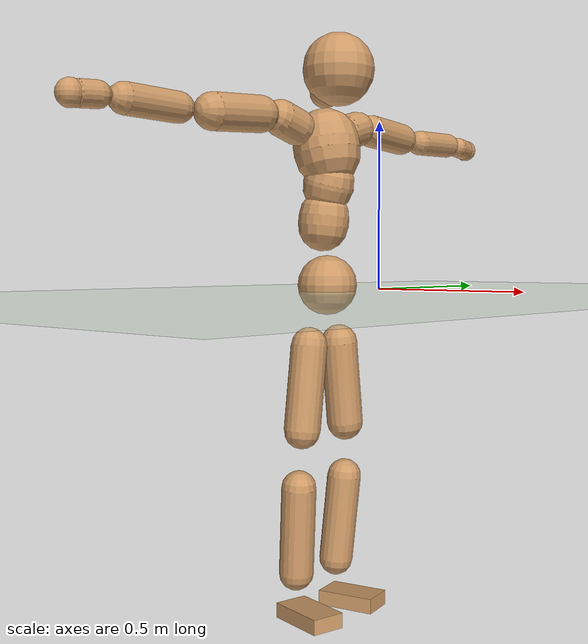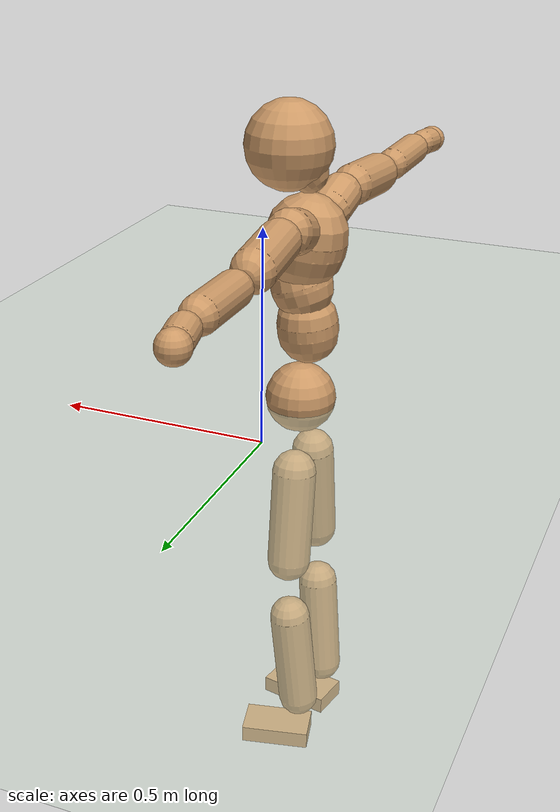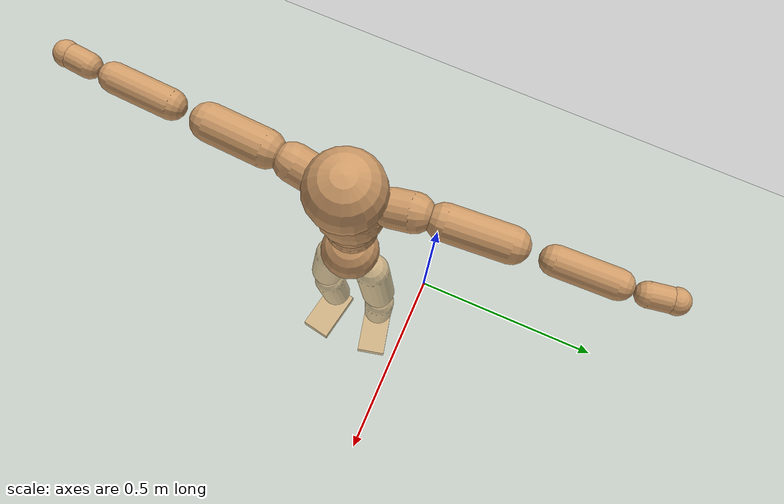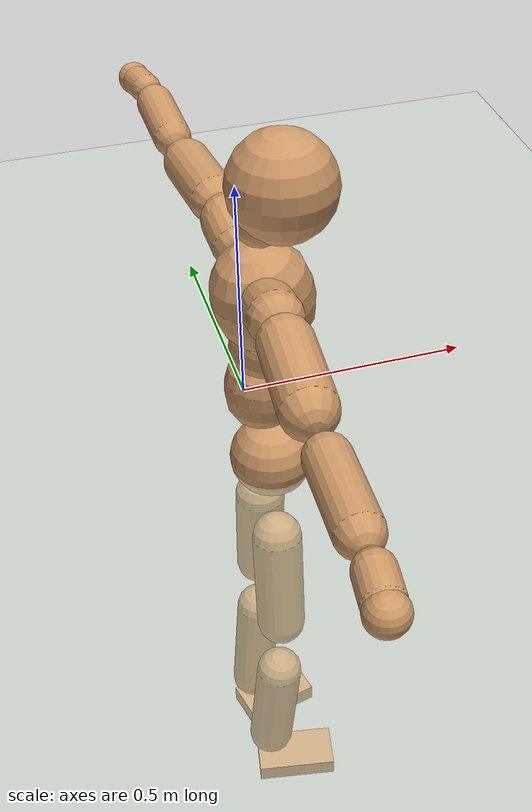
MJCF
<mujoco model="humanoid">
  <compiler coordinate="local"/>
  <default>
    <joint damping="0.0" armature="0.01" stiffness="0.0" limited="true"/>
    <geom conaffinity="1" condim="3" contype="7" margin="0.001" rgba="0.8 0.6 .4 1"/>
  </default>
  <asset>
    <texture type="skybox" builtin="gradient" rgb1=".4 .5 .6" rgb2="0 0 0" width="100" height="100"/>
    <texture builtin="flat" height="1278" mark="cross" markrgb="1 1 1" name="texgeom" random="0.01" rgb1="0.8 0.6 0.4" rgb2="0.8 0.6 0.4" type="cube" width="127"/>
    <texture builtin="checker" height="100" name="texplane" rgb1="0 0 0" rgb2="0.8 0.8 0.8" type="2d" width="100"/>
    <material name="MatPlane" reflectance="0.5" shininess="1" specular="1" texrepeat="60 60" texture="texplane"/>
    <material name="geom" texture="texgeom" texuniform="true"/>
  </asset>
  <worldbody>
    <light cutoff="100" diffuse="1 1 1" dir="-0 0 -1.3" directional="true" exponent="1" pos="0 0 1.3" specular=".1 .1 .1"/>
    <geom conaffinity="1" condim="3" name="floor" pos="0 0 0" rgba="0.8 0.9 0.8 1" size="100 100 .2" type="plane" material="MatPlane"/>
    <body name="Pelvis" pos="-0.0037 -0.2321 0.0154">
      <freejoint name="Pelvis"/>
      <geom type="sphere" contype="1" conaffinity="1" density="500" size="0.0852" pos="0.0000 0.0000 0.0000" name="Pelvis"/>
      <body name="L_Hip" pos="-0.0118 0.057 -0.0904">
        <joint name="L_Hip_x" type="hinge" pos="0 0 0" axis="1 0 0" stiffness="800" damping="80" armature="0.02" range="-180.0000 180.0000"/>
        <joint name="L_Hip_y" type="hinge" pos="0 0 0" axis="0 1 0" stiffness="800" damping="80" armature="0.02" range="-180.0000 180.0000"/>
        <joint name="L_Hip_z" type="hinge" pos="0 0 0" axis="0 0 1" stiffness="800" damping="80" armature="0.02" range="-180.0000 180.0000"/>
        <geom type="capsule" contype="1" conaffinity="1" density="500" fromto="0.0004 0.0084 -0.0791 0.0016 0.0338 -0.3166" size="0.0531" name="L_Hip"/>
        <body name="L_Knee" pos="0.002 0.0422 -0.3957">
          <joint name="L_Knee_x" type="hinge" pos="0 0 0" axis="1 0 0" stiffness="800" damping="80" armature="0.02" range="-180.0000 180.0000"/>
          <joint name="L_Knee_y" type="hinge" pos="0 0 0" axis="0 1 0" stiffness="800" damping="80" armature="0.02" range="-180.0000 180.0000"/>
          <joint name="L_Knee_z" type="hinge" pos="0 0 0" axis="0 0 1" stiffness="800" damping="80" armature="0.02" range="-180.0000 180.0000"/>
          <geom type="capsule" contype="1" conaffinity="1" density="500" fromto="-0.0077 -0.0034 -0.0843 -0.0308 -0.0134 -0.3372" size="0.05" name="L_Knee"/>
          <body name="L_Ankle" pos="-0.0385 -0.0168 -0.4214">
            <joint name="L_Ankle_x" type="hinge" pos="0 0 0" axis="1 0 0" stiffness="800" damping="80" armature="0.02" range="-180.0000 180.0000"/>
            <joint name="L_Ankle_y" type="hinge" pos="0 0 0" axis="0 1 0" stiffness="800" damping="80" armature="0.02" range="-180.0000 180.0000"/>
            <joint name="L_Ankle_z" type="hinge" pos="0 0 0" axis="0 0 1" stiffness="800" damping="80" armature="0.02" range="-180.0000 180.0000"/>
            <geom type="box" contype="1" conaffinity="1" density="500" pos="0.0622 0.0143 -0.0288" size="0.0861 0.0489 0.0217" quat="0.9937 0.0000 0.0000 0.1124" name="L_Ankle"/>
            <body name="L_Toe" pos="0.1245 0.0285 -0.0575">
              <joint name="L_Toe_x" type="hinge" pos="0 0 0" axis="1 0 0" stiffness="500" damping="50" armature="0.02" range="-180.0000 180.0000"/>
              <joint name="L_Toe_y" type="hinge" pos="0 0 0" axis="0 1 0" stiffness="500" damping="50" armature="0.02" range="-180.0000 180.0000"/>
              <joint name="L_Toe_z" type="hinge" pos="0 0 0" axis="0 0 1" stiffness="500" damping="50" armature="0.02" range="-180.0000 180.0000"/>
              <geom type="box" contype="1" conaffinity="1" density="500" pos="0.0000 0.0000 0.0286" size="0.001 0.0024 0.0011" quat="0.9930 0.0000 0.0000 0.1182" name="L_Toe"/>
            </body>
          </body>
        </body>
      </body>
      <body name="R_Hip" pos="-0.0099 -0.0556 -0.0895">
        <joint name="R_Hip_x" type="hinge" pos="0 0 0" axis="1 0 0" stiffness="800" damping="80" armature="0.02" range="-180.0000 180.0000"/>
        <joint name="R_Hip_y" type="hinge" pos="0 0 0" axis="0 1 0" stiffness="800" damping="80" armature="0.02" range="-180.0000 180.0000"/>
        <joint name="R_Hip_z" type="hinge" pos="0 0 0" axis="0 0 1" stiffness="800" damping="80" armature="0.02" range="-180.0000 180.0000"/>
        <geom type="capsule" contype="1" conaffinity="1" density="500" fromto="-0.0010 -0.0089 -0.0807 -0.0038 -0.0357 -0.3226" size="0.052" name="R_Hip"/>
        <body name="R_Knee" pos="-0.0048 -0.0446 -0.4033">
          <joint name="R_Knee_x" type="hinge" pos="0 0 0" axis="1 0 0" stiffness="800" damping="80" armature="0.02" range="-180.0000 180.0000"/>
          <joint name="R_Knee_y" type="hinge" pos="0 0 0" axis="0 1 0" stiffness="800" damping="80" armature="0.02" range="-180.0000 180.0000"/>
          <joint name="R_Knee_z" type="hinge" pos="0 0 0" axis="0 0 1" stiffness="800" damping="80" armature="0.02" range="-180.0000 180.0000"/>
          <geom type="capsule" contype="1" conaffinity="1" density="500" fromto="-0.0072 0.0039 -0.0843 -0.0288 0.0155 -0.3373" size="0.0502" name="R_Knee"/>
          <body name="R_Ankle" pos="-0.036 0.0194 -0.4216">
            <joint name="R_Ankle_x" type="hinge" pos="0 0 0" axis="1 0 0" stiffness="800" damping="80" armature="0.02" range="-180.0000 180.0000"/>
            <joint name="R_Ankle_y" type="hinge" pos="0 0 0" axis="0 1 0" stiffness="800" damping="80" armature="0.02" range="-180.0000 180.0000"/>
            <joint name="R_Ankle_z" type="hinge" pos="0 0 0" axis="0 0 1" stiffness="800" damping="80" armature="0.02" range="-180.0000 180.0000"/>
            <geom type="box" contype="1" conaffinity="1" density="500" pos="0.0647 -0.0121 -0.0254" size="0.0904 0.0498 0.0215" quat="0.9957 0.0000 0.0000 -0.0922" name="R_Ankle"/>
            <body name="R_Toe" pos="0.1293 -0.0242 -0.0507">
              <joint name="R_Toe_x" type="hinge" pos="0 0 0" axis="1 0 0" stiffness="500" damping="50" armature="0.02" range="-180.0000 180.0000"/>
              <joint name="R_Toe_y" type="hinge" pos="0 0 0" axis="0 1 0" stiffness="500" damping="50" armature="0.02" range="-180.0000 180.0000"/>
              <joint name="R_Toe_z" type="hinge" pos="0 0 0" axis="0 0 1" stiffness="500" damping="50" armature="0.02" range="-180.0000 180.0000"/>
              <geom type="box" contype="1" conaffinity="1" density="500" pos="0.0000 0.0000 0.0262" size="0.001 0.0024 0.0011" quat="0.9965 0.0000 0.0000 -0.0835" name="R_Toe"/>
            </body>
          </body>
        </body>
      </body>
      <body name="Torso" pos="-0.0208 -0.0028 0.1108">
        <joint name="Torso_x" type="hinge" pos="0 0 0" axis="1 0 0" stiffness="1000" damping="100" armature="0.02" range="-180.0000 180.0000"/>
        <joint name="Torso_y" type="hinge" pos="0 0 0" axis="0 1 0" stiffness="1000" damping="100" armature="0.02" range="-180.0000 180.0000"/>
        <joint name="Torso_z" type="hinge" pos="0 0 0" axis="0 0 1" stiffness="1000" damping="100" armature="0.02" range="-180.0000 180.0000"/>
        <geom type="capsule" contype="1" conaffinity="1" density="500" fromto="0.0069 0.0052 0.0873 0.0046 0.0035 0.0582" size="0.0725" name="Torso"/>
        <body name="Spine" pos="0.0115 0.0087 0.1456">
          <joint name="Spine_x" type="hinge" pos="0 0 0" axis="1 0 0" stiffness="1000" damping="100" armature="0.02" range="-180.0000 180.0000"/>
          <joint name="Spine_y" type="hinge" pos="0 0 0" axis="0 1 0" stiffness="1000" damping="100" armature="0.02" range="-180.0000 180.0000"/>
          <joint name="Spine_z" type="hinge" pos="0 0 0" axis="0 0 1" stiffness="1000" damping="100" armature="0.02" range="-180.0000 180.0000"/>
          <geom type="capsule" contype="1" conaffinity="1" density="500" fromto="0.0107 0.0006 0.0345 0.0071 0.0004 0.0230" size="0.073" name="Spine"/>
          <body name="Chest" pos="0.0178 0.0009 0.0574">
            <joint name="Chest_x" type="hinge" pos="0 0 0" axis="1 0 0" stiffness="1000" damping="100" armature="0.02" range="-180.0000 180.0000"/>
            <joint name="Chest_y" type="hinge" pos="0 0 0" axis="0 1 0" stiffness="1000" damping="100" armature="0.02" range="-180.0000 180.0000"/>
            <joint name="Chest_z" type="hinge" pos="0 0 0" axis="0 0 1" stiffness="1000" damping="100" armature="0.02" range="-180.0000 180.0000"/>
            <geom type="capsule" contype="1" conaffinity="1" density="500" fromto="-0.0184 -0.0020 0.0921 -0.0122 -0.0014 0.0614" size="0.0956" name="Chest"/>
            <body name="Neck" pos="-0.0291 -0.0052 0.2179">
              <joint name="Neck_x" type="hinge" pos="0 0 0" axis="1 0 0" stiffness="500" damping="50" armature="0.02" range="-180.0000 180.0000"/>
              <joint name="Neck_y" type="hinge" pos="0 0 0" axis="0 1 0" stiffness="500" damping="50" armature="0.02" range="-180.0000 180.0000"/>
              <joint name="Neck_z" type="hinge" pos="0 0 0" axis="0 0 1" stiffness="500" damping="50" armature="0.02" range="-180.0000 180.0000"/>
              <geom type="capsule" contype="1" conaffinity="1" density="500" fromto="0.0109 0.0016 0.0147 0.0436 0.0064 0.0588" size="0.0455" name="Neck"/>
              <body name="Head" pos="0.0545 0.008 0.0735">
                <joint name="Head_x" type="hinge" pos="0 0 0" axis="1 0 0" stiffness="500" damping="50" armature="0.02" range="-180.0000 180.0000"/>
                <joint name="Head_y" type="hinge" pos="0 0 0" axis="0 1 0" stiffness="500" damping="50" armature="0.02" range="-180.0000 180.0000"/>
                <joint name="Head_z" type="hinge" pos="0 0 0" axis="0 0 1" stiffness="500" damping="50" armature="0.02" range="-180.0000 180.0000"/>
                <geom type="sphere" contype="1" conaffinity="1" density="500" size="0.1018" pos="0.0000 0.0000 0.0000" name="Head"/>
              </body>
            </body>
            <body name="L_Thorax" pos="-0.0301 0.0799 0.1232">
              <joint name="L_Thorax_x" type="hinge" pos="0 0 0" axis="1 0 0" stiffness="500" damping="50" armature="0.02" range="-180.0000 180.0000"/>
              <joint name="L_Thorax_y" type="hinge" pos="0 0 0" axis="0 1 0" stiffness="500" damping="50" armature="0.02" range="-180.0000 180.0000"/>
              <joint name="L_Thorax_z" type="hinge" pos="0 0 0" axis="0 0 1" stiffness="500" damping="50" armature="0.02" range="-180.0000 180.0000"/>
              <geom type="capsule" contype="1" conaffinity="1" density="500" fromto="-0.0017 0.0190 0.0056 -0.0070 0.0762 0.0223" size="0.0516" name="L_Thorax"/>
              <body name="L_Shoulder" pos="-0.0087 0.0952 0.0279">
                <joint name="L_Shoulder_x" type="hinge" pos="0 0 0" axis="1 0 0" stiffness="500" damping="50" armature="0.02" range="-720.0000 720.0000"/>
                <joint name="L_Shoulder_y" type="hinge" pos="0 0 0" axis="0 1 0" stiffness="500" damping="50" armature="0.02" range="-720.0000 720.0000"/>
                <joint name="L_Shoulder_z" type="hinge" pos="0 0 0" axis="0 0 1" stiffness="500" damping="50" armature="0.02" range="-720.0000 720.0000"/>
                <geom type="capsule" contype="1" conaffinity="1" density="500" fromto="-0.0046 0.0557 -0.0030 -0.0185 0.2230 -0.0118" size="0.0481" name="L_Shoulder"/>
                <body name="L_Elbow" pos="-0.0231 0.2787 -0.0148">
                  <joint name="L_Elbow_x" type="hinge" pos="0 0 0" axis="1 0 0" stiffness="500" damping="50" armature="0.02" range="-720.0000 720.0000"/>
                  <joint name="L_Elbow_y" type="hinge" pos="0 0 0" axis="0 1 0" stiffness="500" damping="50" armature="0.02" range="-720.0000 720.0000"/>
                  <joint name="L_Elbow_z" type="hinge" pos="0 0 0" axis="0 0 1" stiffness="500" damping="50" armature="0.02" range="-720.0000 720.0000"/>
                  <geom type="capsule" contype="1" conaffinity="1" density="500" fromto="-0.0011 0.0526 0.0016 -0.0043 0.2103 0.0064" size="0.0391" name="L_Elbow"/>
                  <body name="L_Wrist" pos="-0.0054 0.2629 0.008">
                    <joint name="L_Wrist_x" type="hinge" pos="0 0 0" axis="1 0 0" stiffness="300" damping="30" armature="0.02" range="-180.0000 180.0000"/>
                    <joint name="L_Wrist_y" type="hinge" pos="0 0 0" axis="0 1 0" stiffness="300" damping="30" armature="0.02" range="-180.0000 180.0000"/>
                    <joint name="L_Wrist_z" type="hinge" pos="0 0 0" axis="0 0 1" stiffness="300" damping="30" armature="0.02" range="-180.0000 180.0000"/>
                    <geom type="capsule" contype="1" conaffinity="1" density="500" fromto="-0.0034 0.0174 -0.0012 -0.0134 0.0697 -0.0049" size="0.0327" name="L_Wrist"/>
                    <body name="L_Hand" pos="-0.0168 0.0871 -0.0061">
                      <joint name="L_Hand_x" type="hinge" pos="0 0 0" axis="1 0 0" stiffness="300" damping="30" armature="0.02" range="-180.0000 180.0000"/>
                      <joint name="L_Hand_y" type="hinge" pos="0 0 0" axis="0 1 0" stiffness="300" damping="30" armature="0.02" range="-180.0000 180.0000"/>
                      <joint name="L_Hand_z" type="hinge" pos="0 0 0" axis="0 0 1" stiffness="300" damping="30" armature="0.02" range="-180.0000 180.0000"/>
                      <geom type="sphere" contype="1" conaffinity="1" density="500" size="0.0345" pos="0.0000 0.0000 0.0000" name="L_Hand"/>
                    </body>
                  </body>
                </body>
              </body>
            </body>
            <body name="R_Thorax" pos="-0.0325 -0.0849 0.1193">
              <joint name="R_Thorax_x" type="hinge" pos="0 0 0" axis="1 0 0" stiffness="500" damping="50" armature="0.02" range="-180.0000 180.0000"/>
              <joint name="R_Thorax_y" type="hinge" pos="0 0 0" axis="0 1 0" stiffness="500" damping="50" armature="0.02" range="-180.0000 180.0000"/>
              <joint name="R_Thorax_z" type="hinge" pos="0 0 0" axis="0 0 1" stiffness="500" damping="50" armature="0.02" range="-180.0000 180.0000"/>
              <geom type="capsule" contype="1" conaffinity="1" density="500" fromto="-0.0013 -0.0202 0.0064 -0.0052 -0.0807 0.0257" size="0.0509" name="R_Thorax"/>
              <body name="R_Shoulder" pos="-0.0065 -0.1008 0.0322">
                <joint name="R_Shoulder_x" type="hinge" pos="0 0 0" axis="1 0 0" stiffness="500" damping="50" armature="0.02" range="-720.0000 720.0000"/>
                <joint name="R_Shoulder_y" type="hinge" pos="0 0 0" axis="0 1 0" stiffness="500" damping="50" armature="0.02" range="-720.0000 720.0000"/>
                <joint name="R_Shoulder_z" type="hinge" pos="0 0 0" axis="0 0 1" stiffness="500" damping="50" armature="0.02" range="-720.0000 720.0000"/>
                <geom type="capsule" contype="1" conaffinity="1" density="500" fromto="-0.0035 -0.0535 -0.0032 -0.0141 -0.2142 -0.0127" size="0.0504" name="R_Shoulder"/>
                <body name="R_Elbow" pos="-0.0176 -0.2677 -0.0158">
                  <joint name="R_Elbow_x" type="hinge" pos="0 0 0" axis="1 0 0" stiffness="500" damping="50" armature="0.02" range="-720.0000 720.0000"/>
                  <joint name="R_Elbow_y" type="hinge" pos="0 0 0" axis="0 1 0" stiffness="500" damping="50" armature="0.02" range="-720.0000 720.0000"/>
                  <joint name="R_Elbow_z" type="hinge" pos="0 0 0" axis="0 0 1" stiffness="500" damping="50" armature="0.02" range="-720.0000 720.0000"/>
                  <geom type="capsule" contype="1" conaffinity="1" density="500" fromto="-0.0022 -0.0540 0.0013 -0.0088 -0.2160 0.0053" size="0.0401" name="R_Elbow"/>
                  <body name="R_Wrist" pos="-0.011 -0.27 0.0067">
                    <joint name="R_Wrist_x" type="hinge" pos="0 0 0" axis="1 0 0" stiffness="300" damping="30" armature="0.02" range="-180.0000 180.0000"/>
                    <joint name="R_Wrist_y" type="hinge" pos="0 0 0" axis="0 1 0" stiffness="300" damping="30" armature="0.02" range="-180.0000 180.0000"/>
                    <joint name="R_Wrist_z" type="hinge" pos="0 0 0" axis="0 0 1" stiffness="300" damping="30" armature="0.02" range="-180.0000 180.0000"/>
                    <geom type="capsule" contype="1" conaffinity="1" density="500" fromto="-0.0019 -0.0175 -0.0009 -0.0078 -0.0702 -0.0037" size="0.0336" name="R_Wrist"/>
                    <body name="R_Hand" pos="-0.0097 -0.0877 -0.0046">
                      <joint name="R_Hand_x" type="hinge" pos="0 0 0" axis="1 0 0" stiffness="300" damping="30" armature="0.02" range="-180.0000 180.0000"/>
                      <joint name="R_Hand_y" type="hinge" pos="0 0 0" axis="0 1 0" stiffness="300" damping="30" armature="0.02" range="-180.0000 180.0000"/>
                      <joint name="R_Hand_z" type="hinge" pos="0 0 0" axis="0 0 1" stiffness="300" damping="30" armature="0.02" range="-180.0000 180.0000"/>
                      <geom type="sphere" contype="1" conaffinity="1" density="500" size="0.0351" pos="0.0000 0.0000 0.0000" name="R_Hand"/>
                    </body>
                  </body>
                </body>
              </body>
            </body>
          </body>
        </body>
      </body>
    </body>
  </worldbody>
  <actuator>
    <motor name="L_Hip_x" joint="L_Hip_x" gear="500"/>
    <motor name="L_Hip_y" joint="L_Hip_y" gear="500"/>
    <motor name="L_Hip_z" joint="L_Hip_z" gear="500"/>
    <motor name="L_Knee_x" joint="L_Knee_x" gear="500"/>
    <motor name="L_Knee_y" joint="L_Knee_y" gear="500"/>
    <motor name="L_Knee_z" joint="L_Knee_z" gear="500"/>
    <motor name="L_Ankle_x" joint="L_Ankle_x" gear="500"/>
    <motor name="L_Ankle_y" joint="L_Ankle_y" gear="500"/>
    <motor name="L_Ankle_z" joint="L_Ankle_z" gear="500"/>
    <motor name="L_Toe_x" joint="L_Toe_x" gear="500"/>
    <motor name="L_Toe_y" joint="L_Toe_y" gear="500"/>
    <motor name="L_Toe_z" joint="L_Toe_z" gear="500"/>
    <motor name="R_Hip_x" joint="R_Hip_x" gear="500"/>
    <motor name="R_Hip_y" joint="R_Hip_y" gear="500"/>
    <motor name="R_Hip_z" joint="R_Hip_z" gear="500"/>
    <motor name="R_Knee_x" joint="R_Knee_x" gear="500"/>
    <motor name="R_Knee_y" joint="R_Knee_y" gear="500"/>
    <motor name="R_Knee_z" joint="R_Knee_z" gear="500"/>
    <motor name="R_Ankle_x" joint="R_Ankle_x" gear="500"/>
    <motor name="R_Ankle_y" joint="R_Ankle_y" gear="500"/>
    <motor name="R_Ankle_z" joint="R_Ankle_z" gear="500"/>
    <motor name="R_Toe_x" joint="R_Toe_x" gear="500"/>
    <motor name="R_Toe_y" joint="R_Toe_y" gear="500"/>
    <motor name="R_Toe_z" joint="R_Toe_z" gear="500"/>
    <motor name="Torso_x" joint="Torso_x" gear="500"/>
    <motor name="Torso_y" joint="Torso_y" gear="500"/>
    <motor name="Torso_z" joint="Torso_z" gear="500"/>
    <motor name="Spine_x" joint="Spine_x" gear="500"/>
    <motor name="Spine_y" joint="Spine_y" gear="500"/>
    <motor name="Spine_z" joint="Spine_z" gear="500"/>
    <motor name="Chest_x" joint="Chest_x" gear="500"/>
    <motor name="Chest_y" joint="Chest_y" gear="500"/>
    <motor name="Chest_z" joint="Chest_z" gear="500"/>
    <motor name="Neck_x" joint="Neck_x" gear="500"/>
    <motor name="Neck_y" joint="Neck_y" gear="500"/>
    <motor name="Neck_z" joint="Neck_z" gear="500"/>
    <motor name="Head_x" joint="Head_x" gear="500"/>
    <motor name="Head_y" joint="Head_y" gear="500"/>
    <motor name="Head_z" joint="Head_z" gear="500"/>
    <motor name="L_Thorax_x" joint="L_Thorax_x" gear="500"/>
    <motor name="L_Thorax_y" joint="L_Thorax_y" gear="500"/>
    <motor name="L_Thorax_z" joint="L_Thorax_z" gear="500"/>
    <motor name="L_Shoulder_x" joint="L_Shoulder_x" gear="500"/>
    <motor name="L_Shoulder_y" joint="L_Shoulder_y" gear="500"/>
    <motor name="L_Shoulder_z" joint="L_Shoulder_z" gear="500"/>
    <motor name="L_Elbow_x" joint="L_Elbow_x" gear="500"/>
    <motor name="L_Elbow_y" joint="L_Elbow_y" gear="500"/>
    <motor name="L_Elbow_z" joint="L_Elbow_z" gear="500"/>
    <motor name="L_Wrist_x" joint="L_Wrist_x" gear="500"/>
    <motor name="L_Wrist_y" joint="L_Wrist_y" gear="500"/>
    <motor name="L_Wrist_z" joint="L_Wrist_z" gear="500"/>
    <motor name="L_Hand_x" joint="L_Hand_x" gear="500"/>
    <motor name="L_Hand_y" joint="L_Hand_y" gear="500"/>
    <motor name="L_Hand_z" joint="L_Hand_z" gear="500"/>
    <motor name="R_Thorax_x" joint="R_Thorax_x" gear="500"/>
    <motor name="R_Thorax_y" joint="R_Thorax_y" gear="500"/>
    <motor name="R_Thorax_z" joint="R_Thorax_z" gear="500"/>
    <motor name="R_Shoulder_x" joint="R_Shoulder_x" gear="500"/>
    <motor name="R_Shoulder_y" joint="R_Shoulder_y" gear="500"/>
    <motor name="R_Shoulder_z" joint="R_Shoulder_z" gear="500"/>
    <motor name="R_Elbow_x" joint="R_Elbow_x" gear="500"/>
    <motor name="R_Elbow_y" joint="R_Elbow_y" gear="500"/>
    <motor name="R_Elbow_z" joint="R_Elbow_z" gear="500"/>
    <motor name="R_Wrist_x" joint="R_Wrist_x" gear="500"/>
    <motor name="R_Wrist_y" joint="R_Wrist_y" gear="500"/>
    <motor name="R_Wrist_z" joint="R_Wrist_z" gear="500"/>
    <motor name="R_Hand_x" joint="R_Hand_x" gear="500"/>
    <motor name="R_Hand_y" joint="R_Hand_y" gear="500"/>
    <motor name="R_Hand_z" joint="R_Hand_z" gear="500"/>
  </actuator>
  <contact>
    <exclude body1="Torso" body2="Chest"/>
    <exclude body1="Head" body2="Chest"/>
    <exclude body1="R_Knee" body2="R_Toe"/>
    <exclude body1="R_Knee" body2="L_Ankle"/>
    <exclude body1="R_Knee" body2="L_Toe"/>
    <exclude body1="L_Knee" body2="L_Toe"/>
    <exclude body1="L_Knee" body2="R_Ankle"/>
    <exclude body1="L_Knee" body2="R_Toe"/>
    <exclude body1="L_Shoulder" body2="Chest"/>
    <exclude body1="R_Shoulder" body2="Chest"/>
  </contact>
  <sensor/>
  <size njmax="700" nconmax="700"/>
</mujoco>
